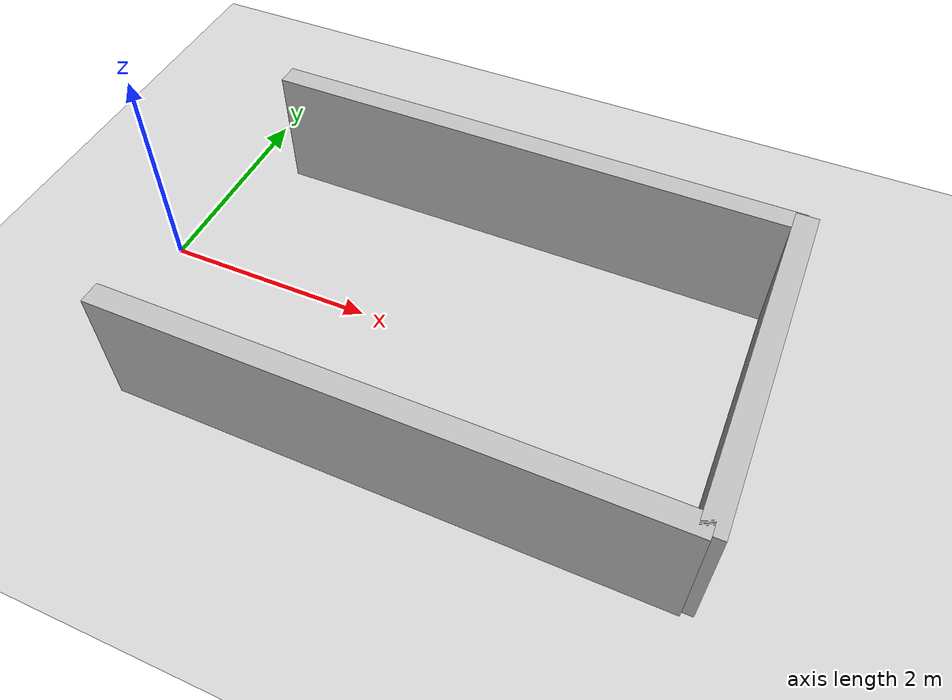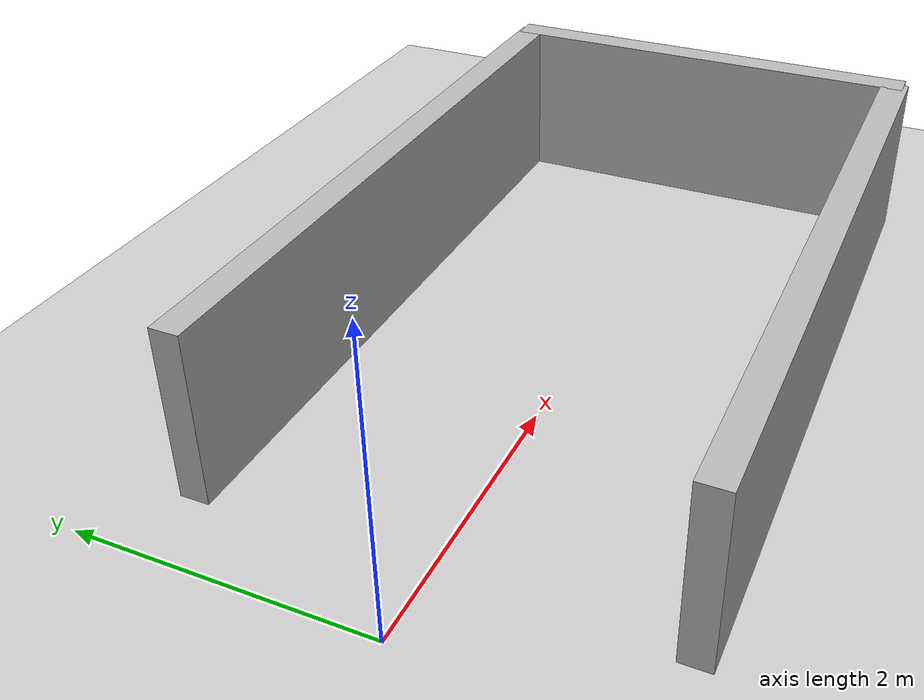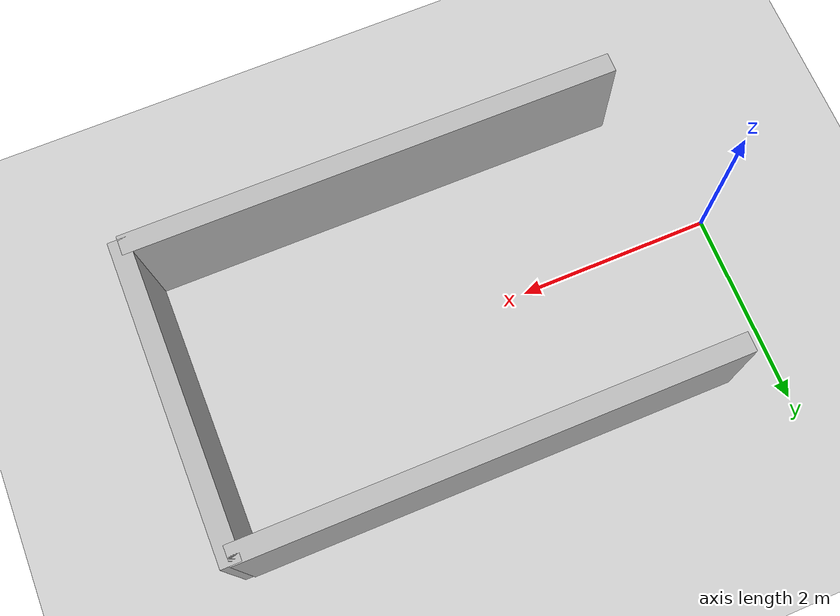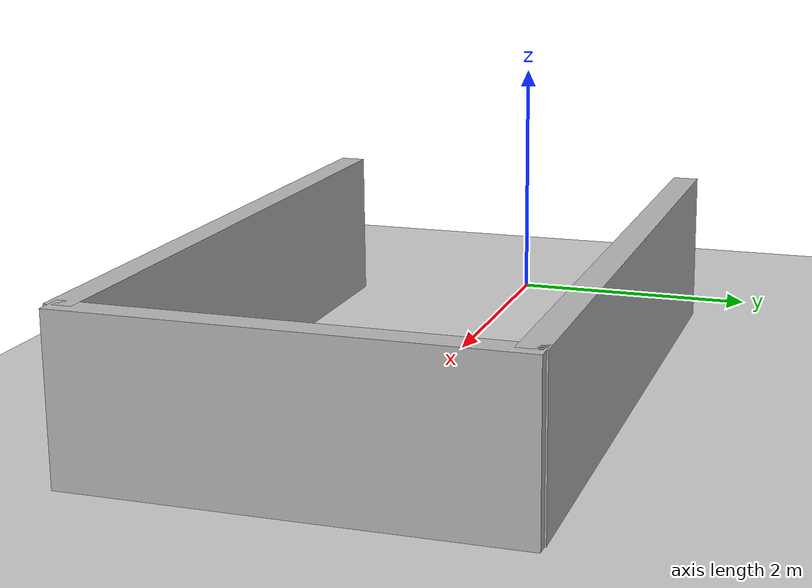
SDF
<?xml version="1.0"?>
<sdf version="1.6">
  <world name="v2-04e2-maneuver-s4715">
    <gravity>0 0 -9.81</gravity>
    <physics name="v2_deterministic" type="ode">
      <max_step_size>0.002</max_step_size>
      <real_time_update_rate>500</real_time_update_rate>
    </physics>
    <include>
      <uri>model://sun</uri>
    </include>
    <include>
      <uri>model://ground_plane</uri>
    </include>
    <model name="bay-left">
      <static>true</static>
      <pose>2.983661168 1.523475994 0.600000000 0 0 -0.003449584</pose>
      <link name="link">
        <collision name="collision">
          <geometry>
            <box>
              <size>5.000000 0.200000 1.200000</size>
            </box>
          </geometry>
        </collision>
        <visual name="visual">
          <geometry>
            <box>
              <size>5.000000 0.200000 1.200000</size>
            </box>
          </geometry>
        </visual>
      </link>
    </model>
    <model name="bay-right">
      <static>true</static>
      <pose>2.981568472 -1.523609895 0.600000000 0 0 -0.003152415</pose>
      <link name="link">
        <collision name="collision">
          <geometry>
            <box>
              <size>5.000000 0.200000 1.200000</size>
            </box>
          </geometry>
        </collision>
        <visual name="visual">
          <geometry>
            <box>
              <size>5.000000 0.200000 1.200000</size>
            </box>
          </geometry>
        </visual>
      </link>
    </model>
    <model name="bay-back">
      <static>true</static>
      <pose>5.476056980 0.004042671 0.600000000 0 0 0.001635774</pose>
      <link name="link">
        <collision name="collision">
          <geometry>
            <box>
              <size>0.200000 3.200000 1.200000</size>
            </box>
          </geometry>
        </collision>
        <visual name="visual">
          <geometry>
            <box>
              <size>0.200000 3.200000 1.200000</size>
            </box>
          </geometry>
        </visual>
      </link>
    </model>
  </world>
</sdf>
